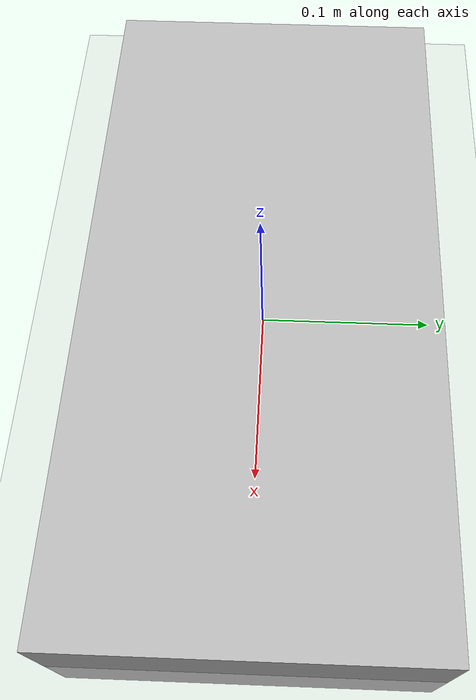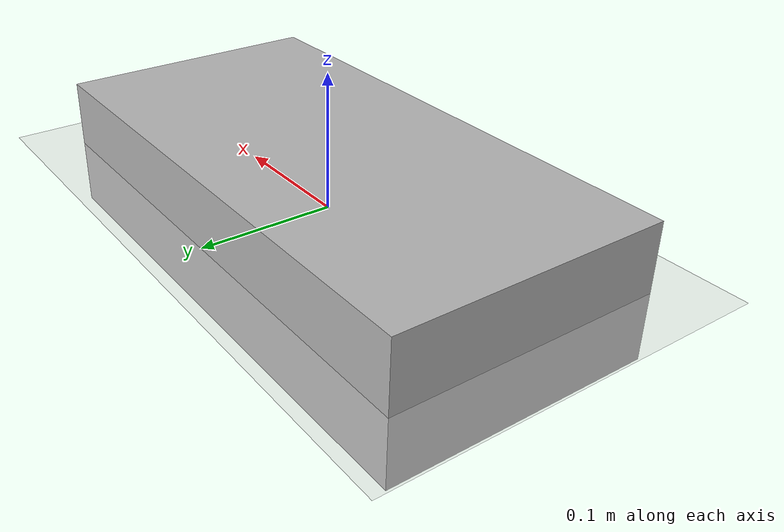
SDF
<?xml version="1.0" ?>
<sdf version="1.5">
    <world name="default">
        <include>
            <uri>model://ground_plane</uri>
        </include>
        <include>
            <uri>model://sun</uri>
        </include>
        <model name="battery_model">
            <link name='battery_body'>
                <pose>0 0 0 0 0 0</pose>
                <collision name='collision'>
                    <geometry>
                        <box>
                            <size>.4 .2 .1</size>
                        </box>
                    </geometry>
                </collision>

                <visual name='visual'>
                    <geometry>
                        <box>
                            <size>.4 .2 .1</size>
                        </box>
                    </geometry>
                </visual>
                <battery name="linear_battery">
                    <voltage>12.592</voltage>
                </battery>
            </link>
            <plugin name="battery_plugin" filename="libBatteryPlugin.so">
                <link_name>battery_body</link_name>
                <battery_name>linear_battery</battery_name>
                <open_circuit_voltage_constant_coef>12.694</open_circuit_voltage_constant_coef>
                <open_circuit_voltage_linear_coef>-3.1424</open_circuit_voltage_linear_coef>
                <initial_charge>1.1665</initial_charge>
                <capacity>1.2009</capacity>
                <resistance>0.061523</resistance>
                <smooth_current_tau>1.9499</smooth_current_tau>
                <power_load>6.6</power_load>
            </plugin>
        </model>
    </world>
</sdf>
